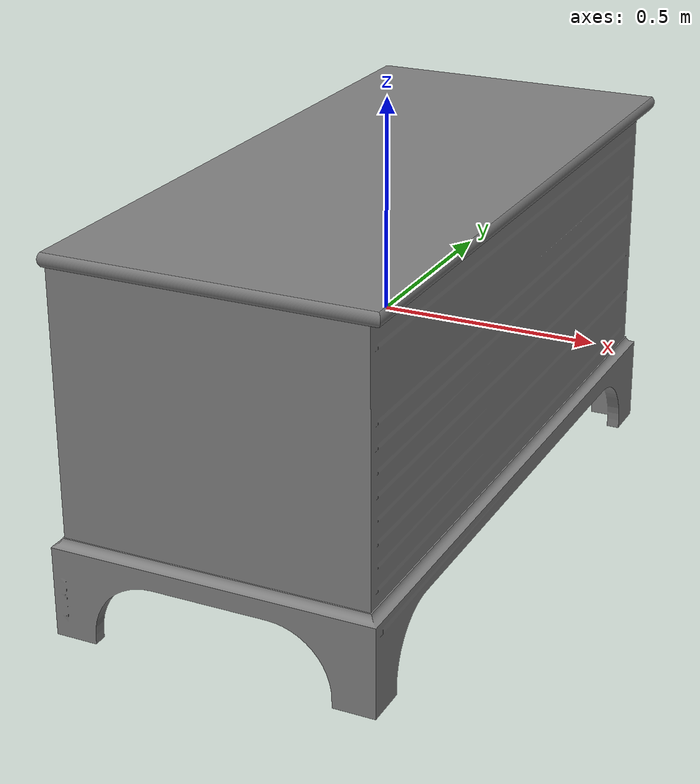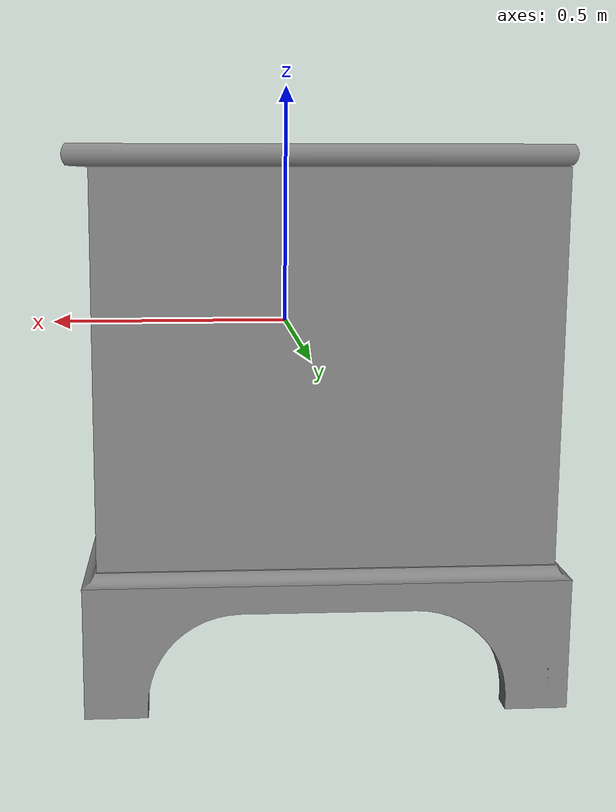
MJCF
<mujoco model="object">
  <compiler angle="radian" meshdir="blender_meshes/"/>
  <asset>
    <mesh name="link_0" file="link_0.obj"/>
    <mesh name="link_1" file="link_1.obj"/>
  </asset>
  <worldbody>
    <body name="root">
      <inertial pos="0 0 0" mass="1" diaginertia="1 1 1"/>
      <geom name="link_1_collision" pos="0 0 0" quat="0.5 0.5 -0.5 -0.5" type="mesh" mesh="link_1"/>
      <body name="link_0" pos="0.352977 0.721368 0.32133" quat="0.5 0.5 -0.5 -0.5">
        <inertial pos="0 0 0" mass="1" diaginertia="1 1 1"/>
        <geom name="link_0_collision" pos="0.72 -0.32 0.35" quat="1 0 0 0" type="mesh" mesh="link_0"/>
        <joint name="joint_0" pos="0 0 0" axis="-1 0 0" range="0 3.14159" actuatorfrcrange="-100 100"/>
      </body>
    </body>
  </worldbody>
</mujoco>
